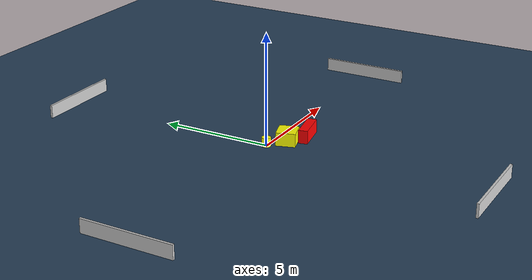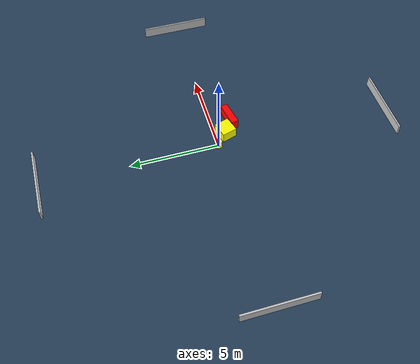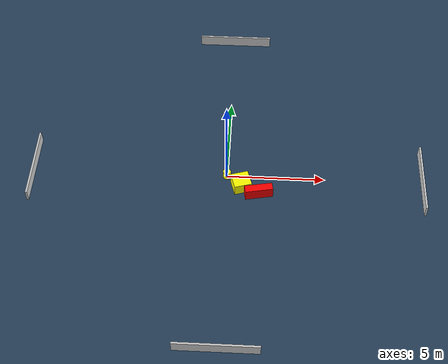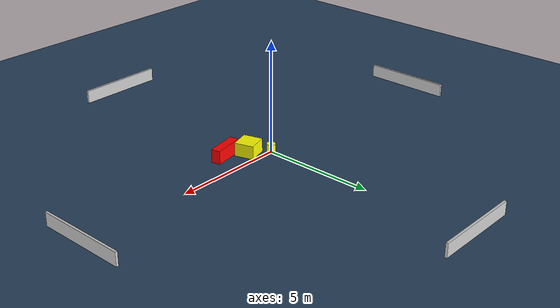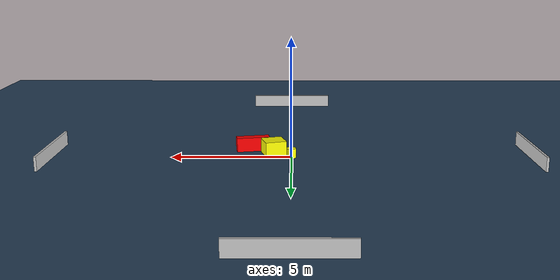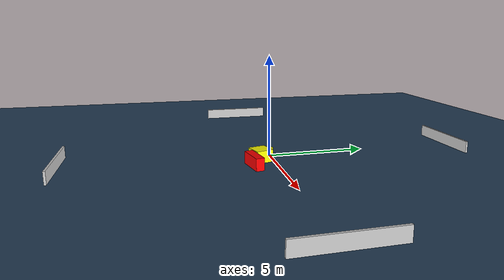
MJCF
<?xml version="1.0" ?>
<mujoco model="generated_environment">
  <option timestep="0.01" integrator="RK4" cone="elliptic"/>
  <default>
    <geom density="1"/>
  </default>
  <asset>
    <texture builtin="gradient" height="3072" name="skybox" rgb1="0.3 0.5 0.7" rgb2="0 0 0" type="skybox" width="512"/>
    <texture builtin="checker" height="300" name="groundplane" rgb1="0.2 0.3 0.4" rgb2="0.1 0.2 0.3" type="2d" width="300"/>
    <material name="groundplane" reflectance="0.2" texrepeat="5 5" texture="groundplane"/>
  </asset>
  <worldbody>
    <light dir="0 0 -1" directional="true" pos="0 0 1.5"/>
    <geom condim="3" friction="0.5 0.005 0.001" material="groundplane" name="floor" pos="0 0 0" size="0 0 0.05" type="plane"/>
    <body name="walls">
      <geom name="wall_1" condim="4" pos="-10.0 0.0 0.3" rgba="0.800000011920929 0.800000011920929 0.800000011920929 1.0" size="0.05 2.0 0.3" type="box"/>
      <geom name="wall_2" condim="4" pos="10.0 0.0 0.3" rgba="0.800000011920929 0.800000011920929 0.800000011920929 1.0" size="0.05 2.0 0.3" type="box"/>
      <geom name="wall_3" condim="4" pos="0.0 -10.0 0.3" rgba="0.800000011920929 0.800000011920929 0.800000011920929 1.0" size="2.0 0.05 0.3" type="box"/>
      <geom name="wall_4" condim="4" pos="0.0 10.0 0.3" rgba="0.800000011920929 0.800000011920929 0.800000011920929 1.0" size="2.0 0.05 0.3" type="box"/>
    </body>
    <body name="robot">
      <joint name="joint_x" type="slide" pos="0 0 0" axis="1 0 0"/>
      <joint name="joint_y" type="slide" pos="0 0 0" axis="0 1 0"/>
      <geom name="robot" type="cylinder" pos="0.0 0.0 0.2" size="0.2 0.2 0.0" mass="5.0" friction="1.0 0.005 0.0001" condim="4" rgba="1.0 1.0 0.0 1.0"/>
    </body>
    <body name="obstacle_1_movable">
      <geom name="obstacle_1_movable" condim="4" pos="0.7481034773431217 -0.6134815203315566 0.3" euler="0 0 106.86316803298936" friction="0.0 0.005 0.001" rgba="1.0 1.0 0.0 1.0" size="0.43085689895764245 0.4496101979468411 0.3" type="box" mass="0.1"/>
      <joint type="free"/>
    </body>
    <body name="obstacle_2_static">
      <geom name="obstacle_2_static" condim="4" pos="1.6513094291370343 -1.1128883893010229 0.3" euler="0 0 280.8237725473891" friction="0.0 0.005 0.001" rgba="1.0 0.0 0.0 1.0" size="0.2051565358821612 0.7050718776585136 0.3" type="box"/>
    </body>
  </worldbody>
  <actuator>
    <motor name="actuator_x" joint="joint_x" gear="1" ctrlrange="-1 1"/>
    <motor name="actuator_y" joint="joint_y" gear="1" ctrlrange="-1 1"/>
  </actuator>
</mujoco>
